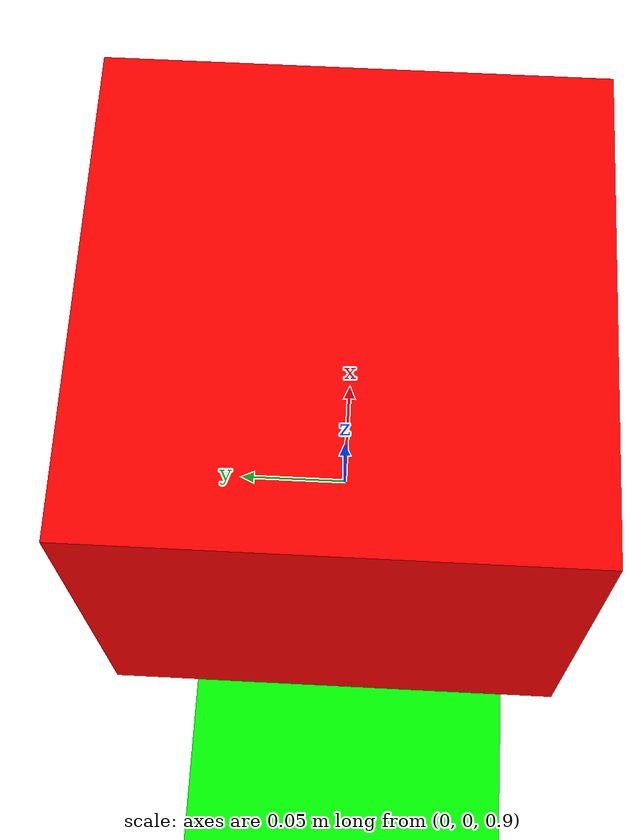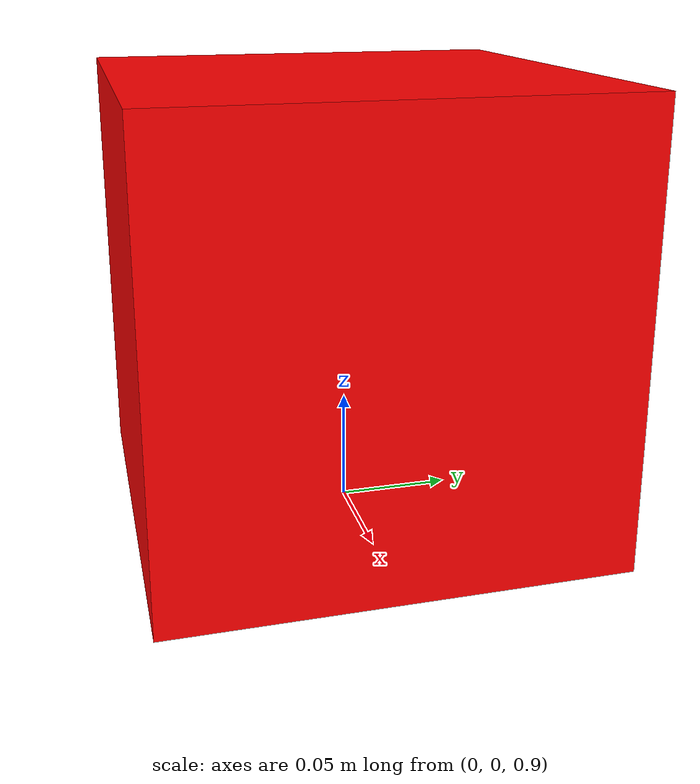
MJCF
<mujoco>
    <!-- Want to have a sphere -->
    <worldbody>
        <!-- Include floor -->
        <geom type="box" size="1 1 0.1" pos="0 0 0" rgba="0 1 0 1"/>
        <body name="sphere" pos="0 0 1">
            <joint type="free" name="sphere_joint"/>
            <geom type="box" size="0.1 0.1 0.1" rgba="1 0 0 1"/>
        </body>
    </worldbody>
</mujoco>
